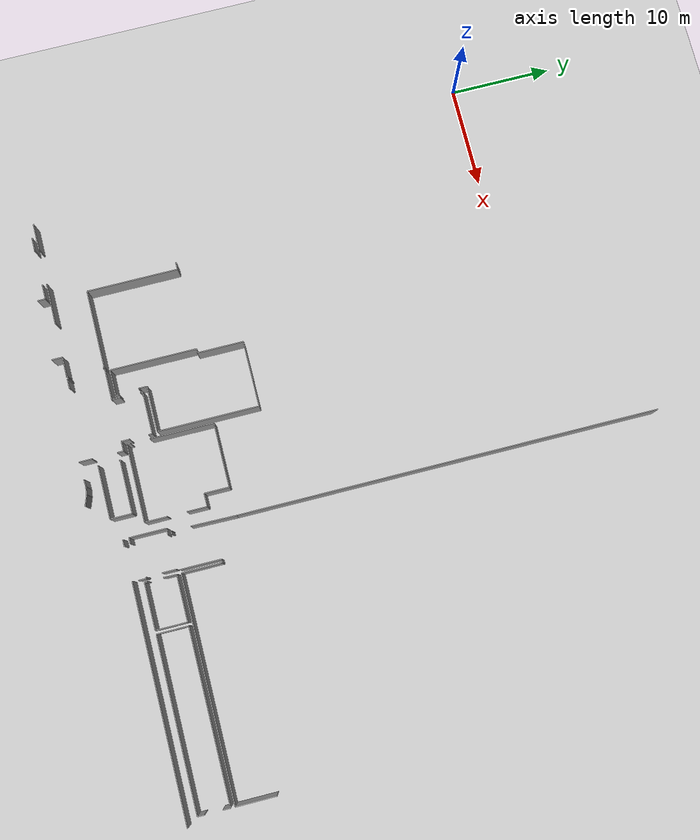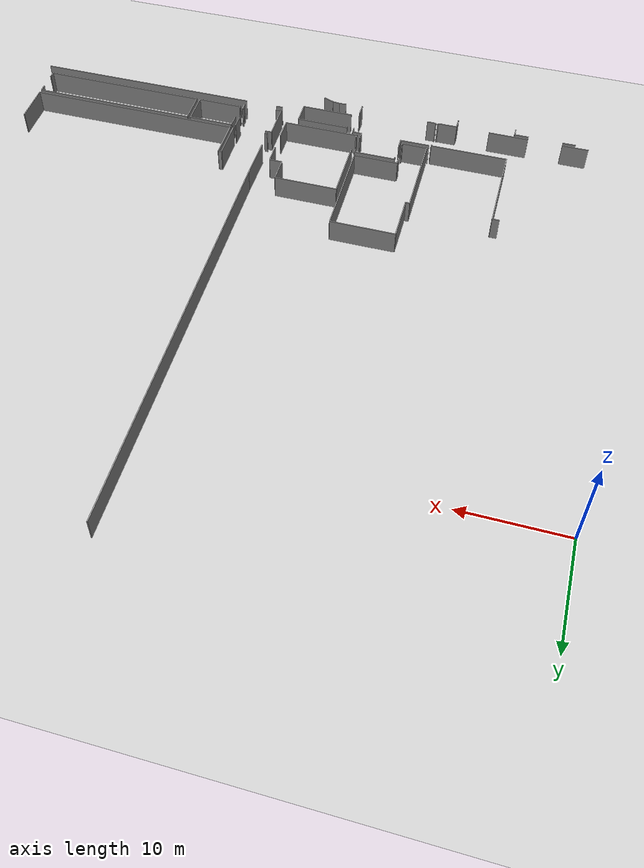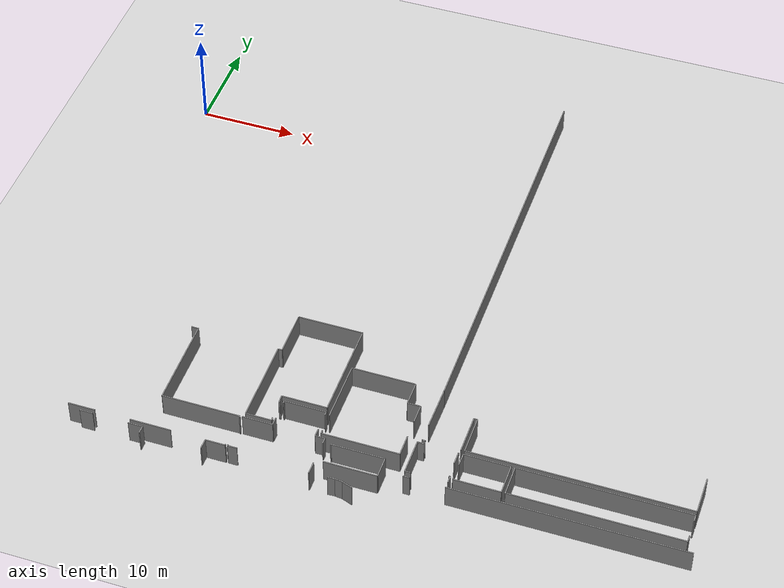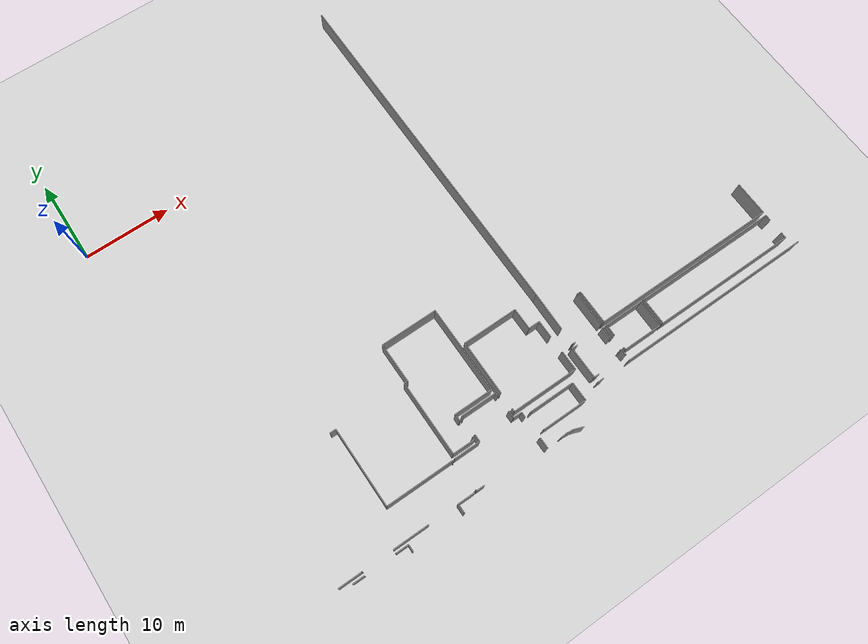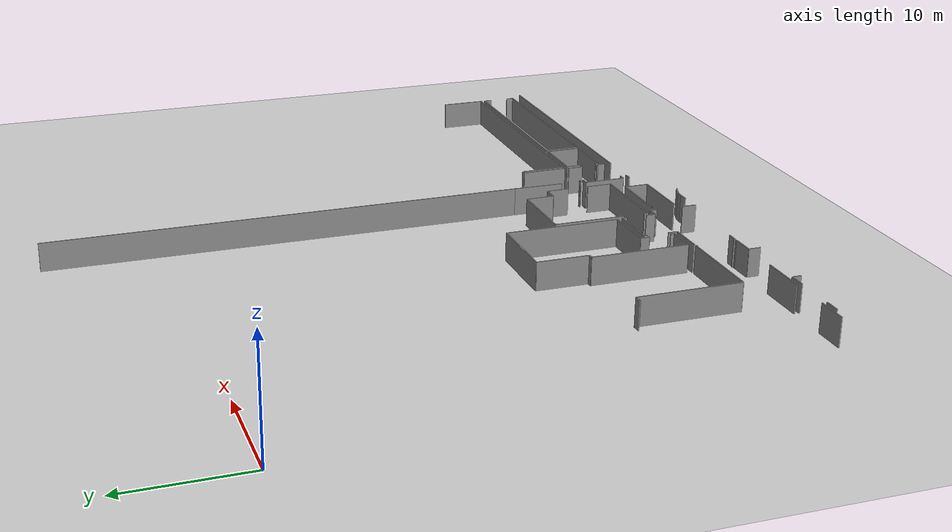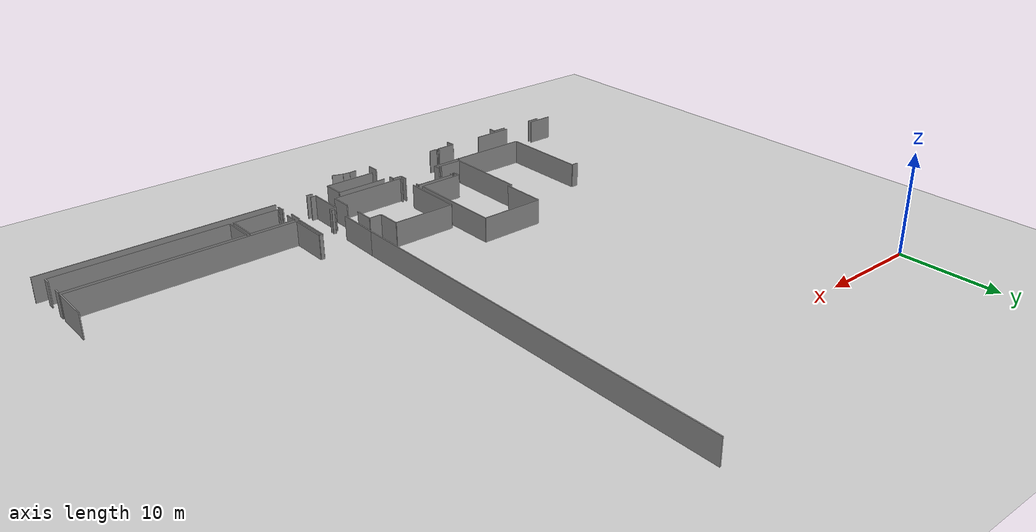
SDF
<sdf version="1.6">
 <world name="default">
  <model name="ground_plane">
   <static>1</static>
   <link name="link">
    <collision name="collision">
     <geometry><plane><normal>0 0 1</normal><size>100 100</size></plane></geometry>
     <surface><friction><ode><mu>100</mu><mu2>50</mu2></ode></friction></surface>
    </collision>
    <visual name="visual">
     <cast_shadows>0</cast_shadows>
     <geometry><plane><normal>0 0 1</normal><size>100 100</size></plane></geometry>
     <material>
      <script><uri>file://media/materials/scripts/gazebo.material</uri><name>Gazebo/Grey</name></script>
     </material>
    </visual>
   </link>
  </model>
  <model name="0510035519_A_40_1_102">
   <static>1</static>
   <link name="Wall_607">
    <collision name="Wall_607_Collision">
     <geometry><box><size>0.712924132672 0.1 2.5</size></box></geometry>
     <pose>0.356462066336 0 1.25 0 0 0</pose>
    </collision>
    <visual name="Wall_607_Visual">
     <pose>0.356462066336 0 1.25 0 0 0</pose>
     <geometry><box><size>0.712924132672 0.1 2.5</size></box></geometry>
     <material>
      <script><uri>file://media/materials/scripts/gazebo.material</uri><name>Gazebo/Grey</name></script>
      <ambient>1 1 1 1</ambient>
     </material>
    </visual>
    <pose>127.991866819 -100.280594739 0 0 0 0.0</pose>
   </link>
   <link name="Wall_608">
    <collision name="Wall_608_Collision">
     <geometry><box><size>9.08450883213 0.1 2.5</size></box></geometry>
     <pose>4.54225441606 0 1.25 0 0 0</pose>
    </collision>
    <visual name="Wall_608_Visual">
     <pose>4.54225441606 0 1.25 0 0 0</pose>
     <geometry><box><size>9.08450883213 0.1 2.5</size></box></geometry>
     <material>
      <script><uri>file://media/materials/scripts/gazebo.material</uri><name>Gazebo/Grey</name></script>
      <ambient>1 1 1 1</ambient>
     </material>
    </visual>
    <pose>128.704790952 -100.280594739 0 0 0 -1.57079632679</pose>
   </link>
   <link name="Wall_609">
    <collision name="Wall_609_Collision">
     <geometry><box><size>7.85766933537 0.1 2.5</size></box></geometry>
     <pose>3.92883466768 0 1.25 0 0 0</pose>
    </collision>
    <visual name="Wall_609_Visual">
     <pose>3.92883466768 0 1.25 0 0 0</pose>
     <geometry><box><size>7.85766933537 0.1 2.5</size></box></geometry>
     <material>
      <script><uri>file://media/materials/scripts/gazebo.material</uri><name>Gazebo/Grey</name></script>
      <ambient>1 1 1 1</ambient>
     </material>
    </visual>
    <pose>128.704790952 -109.365103571 0 0 0 0.0</pose>
   </link>
   <link name="Wall_610">
    <collision name="Wall_610_Collision">
     <geometry><box><size>0.13699326471 0.1 2.5</size></box></geometry>
     <pose>0.0684966323548 0 1.25 0 0 0</pose>
    </collision>
    <visual name="Wall_610_Visual">
     <pose>0.0684966323548 0 1.25 0 0 0</pose>
     <geometry><box><size>0.13699326471 0.1 2.5</size></box></geometry>
     <material>
      <script><uri>file://media/materials/scripts/gazebo.material</uri><name>Gazebo/Grey</name></script>
      <ambient>1 1 1 1</ambient>
     </material>
    </visual>
    <pose>136.562460287 -109.365103571 0 0 0 -1.57079632679</pose>
   </link>
   <link name="Wall_611">
    <collision name="Wall_611_Collision">
     <geometry><box><size>0.10776464608 0.1 2.5</size></box></geometry>
     <pose>0.0538823230398 0 1.25 0 0 0</pose>
    </collision>
    <visual name="Wall_611_Visual">
     <pose>0.0538823230398 0 1.25 0 0 0</pose>
     <geometry><box><size>0.10776464608 0.1 2.5</size></box></geometry>
     <material>
      <script><uri>file://media/materials/scripts/gazebo.material</uri><name>Gazebo/Grey</name></script>
      <ambient>1 1 1 1</ambient>
     </material>
    </visual>
    <pose>136.562460287 -112.980556615 0 0 0 -1.57079632679</pose>
   </link>
   <link name="Wall_612">
    <collision name="Wall_612_Collision">
     <geometry><box><size>1.99161265726 0.1 2.5</size></box></geometry>
     <pose>0.995806328631 0 1.25 0 0 0</pose>
    </collision>
    <visual name="Wall_612_Visual">
     <pose>0.995806328631 0 1.25 0 0 0</pose>
     <geometry><box><size>1.99161265726 0.1 2.5</size></box></geometry>
     <material>
      <script><uri>file://media/materials/scripts/gazebo.material</uri><name>Gazebo/Grey</name></script>
      <ambient>1 1 1 1</ambient>
     </material>
    </visual>
    <pose>136.562460287 -113.088321261 0 0 0 3.14159265359</pose>
   </link>
   <link name="Wall_613">
    <collision name="Wall_613_Collision">
     <geometry><box><size>1.06366755623 0.1 2.5</size></box></geometry>
     <pose>0.531833778117 0 1.25 0 0 0</pose>
    </collision>
    <visual name="Wall_613_Visual">
     <pose>0.531833778117 0 1.25 0 0 0</pose>
     <geometry><box><size>1.06366755623 0.1 2.5</size></box></geometry>
     <material>
      <script><uri>file://media/materials/scripts/gazebo.material</uri><name>Gazebo/Grey</name></script>
      <ambient>1 1 1 1</ambient>
     </material>
    </visual>
    <pose>134.57084763 -113.088321261 0 0 0 -1.57079632679</pose>
   </link>
   <link name="Wall_617">
    <collision name="Wall_617_Collision">
     <geometry><box><size>4.09683568433 0.1 2.5</size></box></geometry>
     <pose>2.04841784217 0 1.25 0 0 0</pose>
    </collision>
    <visual name="Wall_617_Visual">
     <pose>2.04841784217 0 1.25 0 0 0</pose>
     <geometry><box><size>4.09683568433 0.1 2.5</size></box></geometry>
     <material>
      <script><uri>file://media/materials/scripts/gazebo.material</uri><name>Gazebo/Grey</name></script>
      <ambient>1 1 1 1</ambient>
     </material>
    </visual>
    <pose>131.106112594 -113.054009404 0 0 0 3.14159265359</pose>
   </link>
   <link name="Wall_618">
    <collision name="Wall_618_Collision">
     <geometry><box><size>2.71521158978 0.1 2.5</size></box></geometry>
     <pose>1.35760579489 0 1.25 0 0 0</pose>
    </collision>
    <visual name="Wall_618_Visual">
     <pose>1.35760579489 0 1.25 0 0 0</pose>
     <geometry><box><size>2.71521158978 0.1 2.5</size></box></geometry>
     <material>
      <script><uri>file://media/materials/scripts/gazebo.material</uri><name>Gazebo/Grey</name></script>
      <ambient>1 1 1 1</ambient>
     </material>
    </visual>
    <pose>123.435506418 -113.054009404 0 0 0 3.14159265359</pose>
   </link>
   <link name="Wall_634">
    <collision name="Wall_634_Collision">
     <geometry><box><size>1.32952090482 0.1 2.5</size></box></geometry>
     <pose>0.664760452408 0 1.25 0 0 0</pose>
    </collision>
    <visual name="Wall_634_Visual">
     <pose>0.664760452408 0 1.25 0 0 0</pose>
     <geometry><box><size>1.32952090482 0.1 2.5</size></box></geometry>
     <material>
      <script><uri>file://media/materials/scripts/gazebo.material</uri><name>Gazebo/Grey</name></script>
      <ambient>1 1 1 1</ambient>
     </material>
    </visual>
    <pose>122.091244123 -113.478968103 0 0 0 0.0</pose>
   </link>
   <link name="Wall_635">
    <collision name="Wall_635_Collision">
     <geometry><box><size>1.46244757911 0.1 2.5</size></box></geometry>
     <pose>0.731223789554 0 1.25 0 0 0</pose>
    </collision>
    <visual name="Wall_635_Visual">
     <pose>0.731223789554 0 1.25 0 0 0</pose>
     <geometry><box><size>1.46244757911 0.1 2.5</size></box></geometry>
     <material>
      <script><uri>file://media/materials/scripts/gazebo.material</uri><name>Gazebo/Grey</name></script>
      <ambient>1 1 1 1</ambient>
     </material>
    </visual>
    <pose>126.99326471 -113.478968103 0 0 0 0.0</pose>
   </link>
   <link name="Wall_636">
    <collision name="Wall_636_Collision">
     <geometry><box><size>0.789172703012 0.1 2.5</size></box></geometry>
     <pose>0.394586351506 0 1.25 0 0 0</pose>
    </collision>
    <visual name="Wall_636_Visual">
     <pose>0.394586351506 0 1.25 0 0 0</pose>
     <geometry><box><size>0.789172703012 0.1 2.5</size></box></geometry>
     <material>
      <script><uri>file://media/materials/scripts/gazebo.material</uri><name>Gazebo/Grey</name></script>
      <ambient>1 1 1 1</ambient>
     </material>
    </visual>
    <pose>128.455712289 -113.478968103 0 0 0 -1.57079632679</pose>
   </link>
   <link name="Wall_643">
    <collision name="Wall_643_Collision">
     <geometry><box><size>0.93709492947 0.1 2.5</size></box></geometry>
     <pose>0.468547464735 0 1.25 0 0 0</pose>
    </collision>
    <visual name="Wall_643_Visual">
     <pose>0.468547464735 0 1.25 0 0 0</pose>
     <geometry><box><size>0.93709492947 0.1 2.5</size></box></geometry>
     <material>
      <script><uri>file://media/materials/scripts/gazebo.material</uri><name>Gazebo/Grey</name></script>
      <ambient>1 1 1 1</ambient>
     </material>
    </visual>
    <pose>137.720930233 -113.070275766 0 0 0 3.14159265359</pose>
   </link>
   <link name="Wall_644">
    <collision name="Wall_644_Collision">
     <geometry><box><size>0.143347312238 0.1 2.5</size></box></geometry>
     <pose>0.0716736561189 0 1.25 0 0 0</pose>
    </collision>
    <visual name="Wall_644_Visual">
     <pose>0.0716736561189 0 1.25 0 0 0</pose>
     <geometry><box><size>0.143347312238 0.1 2.5</size></box></geometry>
     <material>
      <script><uri>file://media/materials/scripts/gazebo.material</uri><name>Gazebo/Grey</name></script>
      <ambient>1 1 1 1</ambient>
     </material>
    </visual>
    <pose>136.783835303 -113.070275766 0 0 0 1.57079632679</pose>
   </link>
   <link name="Wall_645">
    <collision name="Wall_645_Collision">
     <geometry><box><size>3.03875968992 0.1 2.5</size></box></geometry>
     <pose>1.51937984496 0 1.25 0 0 0</pose>
    </collision>
    <visual name="Wall_645_Visual">
     <pose>1.51937984496 0 1.25 0 0 0</pose>
     <geometry><box><size>3.03875968992 0.1 2.5</size></box></geometry>
     <material>
      <script><uri>file://media/materials/scripts/gazebo.material</uri><name>Gazebo/Grey</name></script>
      <ambient>1 1 1 1</ambient>
     </material>
    </visual>
    <pose>136.783835303 -109.343245647 0 0 0 0.0</pose>
   </link>
   <link name="Wall_646">
    <collision name="Wall_646_Collision">
     <geometry><box><size>0.852204854492 0.1 2.5</size></box></geometry>
     <pose>0.426102427246 0 1.25 0 0 0</pose>
    </collision>
    <visual name="Wall_646_Visual">
     <pose>0.426102427246 0 1.25 0 0 0</pose>
     <geometry><box><size>0.852204854492 0.1 2.5</size></box></geometry>
     <material>
      <script><uri>file://media/materials/scripts/gazebo.material</uri><name>Gazebo/Grey</name></script>
      <ambient>1 1 1 1</ambient>
     </material>
    </visual>
    <pose>139.822594993 -109.343245647 0 0 0 1.57079632679</pose>
   </link>
   <link name="Wall_647">
    <collision name="Wall_647_Collision">
     <geometry><box><size>0.262295081967 0.1 2.5</size></box></geometry>
     <pose>0.131147540984 0 1.25 0 0 0</pose>
    </collision>
    <visual name="Wall_647_Visual">
     <pose>0.131147540984 0 1.25 0 0 0</pose>
     <geometry><box><size>0.262295081967 0.1 2.5</size></box></geometry>
     <material>
      <script><uri>file://media/materials/scripts/gazebo.material</uri><name>Gazebo/Grey</name></script>
      <ambient>1 1 1 1</ambient>
     </material>
    </visual>
    <pose>139.822594993 -106.546193926 0 0 0 1.57079632679</pose>
   </link>
   <link name="Wall_648">
    <collision name="Wall_648_Collision">
     <geometry><box><size>4.21222518744 0.1 2.5</size></box></geometry>
     <pose>2.10611259372 0 1.25 0 0 0</pose>
    </collision>
    <visual name="Wall_648_Visual">
     <pose>2.10611259372 0 1.25 0 0 0</pose>
     <geometry><box><size>4.21222518744 0.1 2.5</size></box></geometry>
     <material>
      <script><uri>file://media/materials/scripts/gazebo.material</uri><name>Gazebo/Grey</name></script>
      <ambient>1 1 1 1</ambient>
     </material>
    </visual>
    <pose>139.822594993 -106.283898844 0 0 0 0.0</pose>
   </link>
   <link name="Wall_649">
    <collision name="Wall_649_Collision">
     <geometry><box><size>0.398525860973 0.1 2.5</size></box></geometry>
     <pose>0.199262930487 0 1.25 0 0 0</pose>
    </collision>
    <visual name="Wall_649_Visual">
     <pose>0.199262930487 0 1.25 0 0 0</pose>
     <geometry><box><size>0.398525860973 0.1 2.5</size></box></geometry>
     <material>
      <script><uri>file://media/materials/scripts/gazebo.material</uri><name>Gazebo/Grey</name></script>
      <ambient>1 1 1 1</ambient>
     </material>
    </visual>
    <pose>144.03482018 -106.283898844 0 0 0 -1.57079632679</pose>
   </link>
   <link name="Wall_650">
    <collision name="Wall_650_Collision">
     <geometry><box><size>0.822722073961 0.1 2.5</size></box></geometry>
     <pose>0.411361036981 0 1.25 0 0 0</pose>
    </collision>
    <visual name="Wall_650_Visual">
     <pose>0.411361036981 0 1.25 0 0 0</pose>
     <geometry><box><size>0.822722073961 0.1 2.5</size></box></geometry>
     <material>
      <script><uri>file://media/materials/scripts/gazebo.material</uri><name>Gazebo/Grey</name></script>
      <ambient>1 1 1 1</ambient>
     </material>
    </visual>
    <pose>144.03482018 -108.514932012 0 0 0 -1.57079632679</pose>
   </link>
   <link name="Wall_651">
    <collision name="Wall_651_Collision">
     <geometry><box><size>0.960731986275 0.1 2.5</size></box></geometry>
     <pose>0.480365993138 0 1.25 0 0 0</pose>
    </collision>
    <visual name="Wall_651_Visual">
     <pose>0.480365993138 0 1.25 0 0 0</pose>
     <geometry><box><size>0.960731986275 0.1 2.5</size></box></geometry>
     <material>
      <script><uri>file://media/materials/scripts/gazebo.material</uri><name>Gazebo/Grey</name></script>
      <ambient>1 1 1 1</ambient>
     </material>
    </visual>
    <pose>144.03482018 -109.337654086 0 0 0 0.0</pose>
   </link>
   <link name="Wall_652">
    <collision name="Wall_652_Collision">
     <geometry><box><size>0.622950819672 0.1 2.5</size></box></geometry>
     <pose>0.311475409836 0 1.25 0 0 0</pose>
    </collision>
    <visual name="Wall_652_Visual">
     <pose>0.311475409836 0 1.25 0 0 0</pose>
     <geometry><box><size>0.622950819672 0.1 2.5</size></box></geometry>
     <material>
      <script><uri>file://media/materials/scripts/gazebo.material</uri><name>Gazebo/Grey</name></script>
      <ambient>1 1 1 1</ambient>
     </material>
    </visual>
    <pose>144.995552167 -109.337654086 0 0 0 -1.57079632679</pose>
   </link>
   <link name="Wall_653">
    <collision name="Wall_653_Collision">
     <geometry><box><size>1.28631338162 0.1 2.5</size></box></geometry>
     <pose>0.643156690812 0 1.25 0 0 0</pose>
    </collision>
    <visual name="Wall_653_Visual">
     <pose>0.643156690812 0 1.25 0 0 0</pose>
     <geometry><box><size>1.28631338162 0.1 2.5</size></box></geometry>
     <material>
      <script><uri>file://media/materials/scripts/gazebo.material</uri><name>Gazebo/Grey</name></script>
      <ambient>1 1 1 1</ambient>
     </material>
    </visual>
    <pose>144.995552167 -112.420637946 0 0 0 -1.57079632679</pose>
   </link>
   <link name="Wall_669">
    <collision name="Wall_669_Collision">
     <geometry><box><size>8.5853348583 0.1 2.5</size></box></geometry>
     <pose>4.29266742915 0 1.25 0 0 0</pose>
    </collision>
    <visual name="Wall_669_Visual">
     <pose>4.29266742915 0 1.25 0 0 0</pose>
     <geometry><box><size>8.5853348583 0.1 2.5</size></box></geometry>
     <material>
      <script><uri>file://media/materials/scripts/gazebo.material</uri><name>Gazebo/Grey</name></script>
      <ambient>1 1 1 1</ambient>
     </material>
    </visual>
    <pose>136.946244758 -108.875587749 0 0 0 1.57079632679</pose>
   </link>
   <link name="Wall_670">
    <collision name="Wall_670_Collision">
     <geometry><box><size>0.412250603635 0.1 2.5</size></box></geometry>
     <pose>0.206125301817 0 1.25 0 0 0</pose>
    </collision>
    <visual name="Wall_670_Visual">
     <pose>0.206125301817 0 1.25 0 0 0</pose>
     <geometry><box><size>0.412250603635 0.1 2.5</size></box></geometry>
     <material>
      <script><uri>file://media/materials/scripts/gazebo.material</uri><name>Gazebo/Grey</name></script>
      <ambient>1 1 1 1</ambient>
     </material>
    </visual>
    <pose>136.946244758 -100.290252891 0 0 0 0.0</pose>
   </link>
   <link name="Wall_671">
    <collision name="Wall_671_Collision">
     <geometry><box><size>4.58711399161 0.1 2.5</size></box></geometry>
     <pose>2.29355699581 0 1.25 0 0 0</pose>
    </collision>
    <visual name="Wall_671_Visual">
     <pose>2.29355699581 0 1.25 0 0 0</pose>
     <geometry><box><size>4.58711399161 0.1 2.5</size></box></geometry>
     <material>
      <script><uri>file://media/materials/scripts/gazebo.material</uri><name>Gazebo/Grey</name></script>
      <ambient>1 1 1 1</ambient>
     </material>
    </visual>
    <pose>137.358495362 -100.290252891 0 0 0 1.57079632679</pose>
   </link>
   <link name="Wall_672">
    <collision name="Wall_672_Collision">
     <geometry><box><size>6.57415173465 0.1 2.5</size></box></geometry>
     <pose>3.28707586733 0 1.25 0 0 0</pose>
    </collision>
    <visual name="Wall_672_Visual">
     <pose>3.28707586733 0 1.25 0 0 0</pose>
     <geometry><box><size>6.57415173465 0.1 2.5</size></box></geometry>
     <material>
      <script><uri>file://media/materials/scripts/gazebo.material</uri><name>Gazebo/Grey</name></script>
      <ambient>1 1 1 1</ambient>
     </material>
    </visual>
    <pose>137.358495362 -95.7031388995 0 0 0 0.0</pose>
   </link>
   <link name="Wall_673">
    <collision name="Wall_673_Collision">
     <geometry><box><size>10.0670987419 0.1 2.5</size></box></geometry>
     <pose>5.03354937095 0 1.25 0 0 0</pose>
    </collision>
    <visual name="Wall_673_Visual">
     <pose>5.03354937095 0 1.25 0 0 0</pose>
     <geometry><box><size>10.0670987419 0.1 2.5</size></box></geometry>
     <material>
      <script><uri>file://media/materials/scripts/gazebo.material</uri><name>Gazebo/Grey</name></script>
      <ambient>1 1 1 1</ambient>
     </material>
    </visual>
    <pose>143.932647096 -95.7031388995 0 0 0 -1.57079632679</pose>
   </link>
   <link name="Wall_674">
    <collision name="Wall_674_Collision">
     <geometry><box><size>4.5403482018 0.1 2.5</size></box></geometry>
     <pose>2.2701741009 0 1.25 0 0 0</pose>
    </collision>
    <visual name="Wall_674_Visual">
     <pose>2.2701741009 0 1.25 0 0 0</pose>
     <geometry><box><size>4.5403482018 0.1 2.5</size></box></geometry>
     <material>
      <script><uri>file://media/materials/scripts/gazebo.material</uri><name>Gazebo/Grey</name></script>
      <ambient>1 1 1 1</ambient>
     </material>
    </visual>
    <pose>143.932647096 -105.770237641 0 0 0 3.14159265359</pose>
   </link>
   <link name="Wall_675">
    <collision name="Wall_675_Collision">
     <geometry><box><size>0.779260388868 0.1 2.5</size></box></geometry>
     <pose>0.389630194434 0 1.25 0 0 0</pose>
    </collision>
    <visual name="Wall_675_Visual">
     <pose>0.389630194434 0 1.25 0 0 0</pose>
     <geometry><box><size>0.779260388868 0.1 2.5</size></box></geometry>
     <material>
      <script><uri>file://media/materials/scripts/gazebo.material</uri><name>Gazebo/Grey</name></script>
      <ambient>1 1 1 1</ambient>
     </material>
    </visual>
    <pose>139.392298894 -105.770237641 0 0 0 -1.57079632679</pose>
   </link>
   <link name="Wall_676">
    <collision name="Wall_676_Collision">
     <geometry><box><size>0.138772398018 0.1 2.5</size></box></geometry>
     <pose>0.0693861990088 0 1.25 0 0 0</pose>
    </collision>
    <visual name="Wall_676_Visual">
     <pose>0.0693861990088 0 1.25 0 0 0</pose>
     <geometry><box><size>0.138772398018 0.1 2.5</size></box></geometry>
     <material>
      <script><uri>file://media/materials/scripts/gazebo.material</uri><name>Gazebo/Grey</name></script>
      <ambient>1 1 1 1</ambient>
     </material>
    </visual>
    <pose>139.392298894 -106.54949803 0 0 0 0.0</pose>
   </link>
   <link name="Wall_677">
    <collision name="Wall_677_Collision">
     <geometry><box><size>0.334477061888 0.1 2.5</size></box></geometry>
     <pose>0.167238530944 0 1.25 0 0 0</pose>
    </collision>
    <visual name="Wall_677_Visual">
     <pose>0.167238530944 0 1.25 0 0 0</pose>
     <geometry><box><size>0.334477061888 0.1 2.5</size></box></geometry>
     <material>
      <script><uri>file://media/materials/scripts/gazebo.material</uri><name>Gazebo/Grey</name></script>
      <ambient>1 1 1 1</ambient>
     </material>
    </visual>
    <pose>139.531071292 -108.56017283 0 0 0 -1.57079632679</pose>
   </link>
   <link name="Wall_678">
    <collision name="Wall_678_Collision">
     <geometry><box><size>2.58489682168 0.1 2.5</size></box></geometry>
     <pose>1.29244841084 0 1.25 0 0 0</pose>
    </collision>
    <visual name="Wall_678_Visual">
     <pose>1.29244841084 0 1.25 0 0 0</pose>
     <geometry><box><size>2.58489682168 0.1 2.5</size></box></geometry>
     <material>
      <script><uri>file://media/materials/scripts/gazebo.material</uri><name>Gazebo/Grey</name></script>
      <ambient>1 1 1 1</ambient>
     </material>
    </visual>
    <pose>139.531071292 -108.894649892 0 0 0 3.13421815601</pose>
   </link>
   <link name="Wall_679">
    <collision name="Wall_679_Collision">
     <geometry><box><size>6.39852586097 0.1 2.5</size></box></geometry>
     <pose>3.19926293049 0 1.25 0 0 0</pose>
    </collision>
    <visual name="Wall_679_Visual">
     <pose>3.19926293049 0 1.25 0 0 0</pose>
     <geometry><box><size>6.39852586097 0.1 2.5</size></box></geometry>
     <material>
      <script><uri>file://media/materials/scripts/gazebo.material</uri><name>Gazebo/Grey</name></script>
      <ambient>1 1 1 1</ambient>
     </material>
    </visual>
    <pose>144.461303851 -100.309569196 0 0 0 0.0</pose>
   </link>
   <link name="Wall_680">
    <collision name="Wall_680_Collision">
     <geometry><box><size>2.45952471724 0.1 2.5</size></box></geometry>
     <pose>1.22976235862 0 1.25 0 0 0</pose>
    </collision>
    <visual name="Wall_680_Visual">
     <pose>1.22976235862 0 1.25 0 0 0</pose>
     <geometry><box><size>2.45952471724 0.1 2.5</size></box></geometry>
     <material>
      <script><uri>file://media/materials/scripts/gazebo.material</uri><name>Gazebo/Grey</name></script>
      <ambient>1 1 1 1</ambient>
     </material>
    </visual>
    <pose>150.859829712 -100.309569196 0 0 0 -1.57079632679</pose>
   </link>
   <link name="Wall_681">
    <collision name="Wall_681_Collision">
     <geometry><box><size>1.30029228619 0.1 2.5</size></box></geometry>
     <pose>0.650146143093 0 1.25 0 0 0</pose>
    </collision>
    <visual name="Wall_681_Visual">
     <pose>0.650146143093 0 1.25 0 0 0</pose>
     <geometry><box><size>1.30029228619 0.1 2.5</size></box></geometry>
     <material>
      <script><uri>file://media/materials/scripts/gazebo.material</uri><name>Gazebo/Grey</name></script>
      <ambient>1 1 1 1</ambient>
     </material>
    </visual>
    <pose>150.859829712 -102.769093913 0 0 0 0.0</pose>
   </link>
   <link name="Wall_682">
    <collision name="Wall_682_Collision">
     <geometry><box><size>1.98373363833 0.1 2.5</size></box></geometry>
     <pose>0.991866819164 0 1.25 0 0 0</pose>
    </collision>
    <visual name="Wall_682_Visual">
     <pose>0.991866819164 0 1.25 0 0 0</pose>
     <geometry><box><size>1.98373363833 0.1 2.5</size></box></geometry>
     <material>
      <script><uri>file://media/materials/scripts/gazebo.material</uri><name>Gazebo/Grey</name></script>
      <ambient>1 1 1 1</ambient>
     </material>
    </visual>
    <pose>152.160121998 -102.769093913 0 0 0 -1.57079632679</pose>
   </link>
   <link name="Wall_683">
    <collision name="Wall_683_Collision">
     <geometry><box><size>2.22315414919 0.1 2.5</size></box></geometry>
     <pose>1.1115770746 0 1.25 0 0 0</pose>
    </collision>
    <visual name="Wall_683_Visual">
     <pose>1.1115770746 0 1.25 0 0 0</pose>
     <geometry><box><size>2.22315414919 0.1 2.5</size></box></geometry>
     <material>
      <script><uri>file://media/materials/scripts/gazebo.material</uri><name>Gazebo/Grey</name></script>
      <ambient>1 1 1 1</ambient>
     </material>
    </visual>
    <pose>152.160121998 -106.662091752 0 0 0 -1.57079632679</pose>
   </link>
   <link name="Wall_684">
    <collision name="Wall_684_Collision">
     <geometry><box><size>7.71711780404 0.1 2.5</size></box></geometry>
     <pose>3.85855890202 0 1.25 0 0 0</pose>
    </collision>
    <visual name="Wall_684_Visual">
     <pose>3.85855890202 0 1.25 0 0 0</pose>
     <geometry><box><size>7.71711780404 0.1 2.5</size></box></geometry>
     <material>
      <script><uri>file://media/materials/scripts/gazebo.material</uri><name>Gazebo/Grey</name></script>
      <ambient>1 1 1 1</ambient>
     </material>
    </visual>
    <pose>152.160121998 -108.885245902 0 0 0 3.14159265359</pose>
   </link>
   <link name="Wall_685">
    <collision name="Wall_685_Collision">
     <geometry><box><size>0.372855508959 0.1 2.5</size></box></geometry>
     <pose>0.18642775448 0 1.25 0 0 0</pose>
    </collision>
    <visual name="Wall_685_Visual">
     <pose>0.18642775448 0 1.25 0 0 0</pose>
     <geometry><box><size>0.372855508959 0.1 2.5</size></box></geometry>
     <material>
      <script><uri>file://media/materials/scripts/gazebo.material</uri><name>Gazebo/Grey</name></script>
      <ambient>1 1 1 1</ambient>
     </material>
    </visual>
    <pose>144.443004194 -108.885245902 0 0 0 1.57079632679</pose>
   </link>
   <link name="Wall_686">
    <collision name="Wall_686_Collision">
     <geometry><box><size>6.30857908946 0.1 2.5</size></box></geometry>
     <pose>3.15428954473 0 1.25 0 0 0</pose>
    </collision>
    <visual name="Wall_686_Visual">
     <pose>3.15428954473 0 1.25 0 0 0</pose>
     <geometry><box><size>6.30857908946 0.1 2.5</size></box></geometry>
     <material>
      <script><uri>file://media/materials/scripts/gazebo.material</uri><name>Gazebo/Grey</name></script>
      <ambient>1 1 1 1</ambient>
     </material>
    </visual>
    <pose>144.443004194 -106.618121744 0 0 0 1.56789556542</pose>
   </link>
   <link name="Wall_687">
    <collision name="Wall_687_Collision">
     <geometry><box><size>5.30130893379 0.1 2.5</size></box></geometry>
     <pose>2.6506544669 0 1.25 0 0 0</pose>
    </collision>
    <visual name="Wall_687_Visual">
     <pose>2.6506544669 0 1.25 0 0 0</pose>
     <geometry><box><size>5.30130893379 0.1 2.5</size></box></geometry>
     <material>
      <script><uri>file://media/materials/scripts/gazebo.material</uri><name>Gazebo/Grey</name></script>
      <ambient>1 1 1 1</ambient>
     </material>
    </visual>
    <pose>145.753717118 -109.83555725 0 0 0 0.0</pose>
   </link>
   <link name="Wall_688">
    <collision name="Wall_688_Collision">
     <geometry><box><size>2.16444275003 0.1 2.5</size></box></geometry>
     <pose>1.08222137502 0 1.25 0 0 0</pose>
    </collision>
    <visual name="Wall_688_Visual">
     <pose>1.08222137502 0 1.25 0 0 0</pose>
     <geometry><box><size>2.16444275003 0.1 2.5</size></box></geometry>
     <material>
      <script><uri>file://media/materials/scripts/gazebo.material</uri><name>Gazebo/Grey</name></script>
      <ambient>1 1 1 1</ambient>
     </material>
    </visual>
    <pose>151.055026052 -109.83555725 0 0 0 -1.57079632679</pose>
   </link>
   <link name="Wall_689">
    <collision name="Wall_689_Collision">
     <geometry><box><size>5.27589274368 0.1 2.5</size></box></geometry>
     <pose>2.63794637184 0 1.25 0 0 0</pose>
    </collision>
    <visual name="Wall_689_Visual">
     <pose>2.63794637184 0 1.25 0 0 0</pose>
     <geometry><box><size>5.27589274368 0.1 2.5</size></box></geometry>
     <material>
      <script><uri>file://media/materials/scripts/gazebo.material</uri><name>Gazebo/Grey</name></script>
      <ambient>1 1 1 1</ambient>
     </material>
    </visual>
    <pose>151.055026052 -112.0 0 0 0 3.14159265359</pose>
   </link>
   <link name="Wall_690">
    <collision name="Wall_690_Collision">
     <geometry><box><size>0.115178815449 0.1 2.5</size></box></geometry>
     <pose>0.0575894077245 0 1.25 0 0 0</pose>
    </collision>
    <visual name="Wall_690_Visual">
     <pose>0.0575894077245 0 1.25 0 0 0</pose>
     <geometry><box><size>0.115178815449 0.1 2.5</size></box></geometry>
     <material>
      <script><uri>file://media/materials/scripts/gazebo.material</uri><name>Gazebo/Grey</name></script>
      <ambient>1 1 1 1</ambient>
     </material>
    </visual>
    <pose>145.779133308 -109.94789681 0 0 0 1.79329483748</pose>
   </link>
   <link name="Wall_697">
    <collision name="Wall_697_Collision">
     <geometry><box><size>0.723020252923 0.1 2.5</size></box></geometry>
     <pose>0.361510126462 0 1.25 0 0 0</pose>
    </collision>
    <visual name="Wall_697_Visual">
     <pose>0.361510126462 0 1.25 0 0 0</pose>
     <geometry><box><size>0.723020252923 0.1 2.5</size></box></geometry>
     <material>
      <script><uri>file://media/materials/scripts/gazebo.material</uri><name>Gazebo/Grey</name></script>
      <ambient>1 1 1 1</ambient>
     </material>
    </visual>
    <pose>146.761214894 -113.588766044 0 0 0 0.0348083057935</pose>
   </link>
   <link name="Wall_698">
    <collision name="Wall_698_Collision">
     <geometry><box><size>0.752897738437 0.1 2.5</size></box></geometry>
     <pose>0.376448869219 0 1.25 0 0 0</pose>
    </collision>
    <visual name="Wall_698_Visual">
     <pose>0.376448869219 0 1.25 0 0 0</pose>
     <geometry><box><size>0.752897738437 0.1 2.5</size></box></geometry>
     <material>
      <script><uri>file://media/materials/scripts/gazebo.material</uri><name>Gazebo/Grey</name></script>
      <ambient>1 1 1 1</ambient>
     </material>
    </visual>
    <pose>147.483797179 -113.563604016 0 0 0 -0.117069301503</pose>
   </link>
   <link name="Wall_699">
    <collision name="Wall_699_Collision">
     <geometry><box><size>1.12442443009 0.1 2.5</size></box></geometry>
     <pose>0.562212215043 0 1.25 0 0 0</pose>
    </collision>
    <visual name="Wall_699_Visual">
     <pose>0.562212215043 0 1.25 0 0 0</pose>
     <geometry><box><size>1.12442443009 0.1 2.5</size></box></geometry>
     <material>
      <script><uri>file://media/materials/scripts/gazebo.material</uri><name>Gazebo/Grey</name></script>
      <ambient>1 1 1 1</ambient>
     </material>
    </visual>
    <pose>148.231541492 -113.651544034 0 0 0 -0.351204276755</pose>
   </link>
   <link name="Wall_726">
    <collision name="Wall_726_Collision">
     <geometry><box><size>41.7654085653 0.1 2.5</size></box></geometry>
     <pose>20.8827042826 0 1.25 0 0 0</pose>
    </collision>
    <visual name="Wall_726_Visual">
     <pose>20.8827042826 0 1.25 0 0 0</pose>
     <geometry><box><size>41.7654085653 0.1 2.5</size></box></geometry>
     <material>
      <script><uri>file://media/materials/scripts/gazebo.material</uri><name>Gazebo/Grey</name></script>
      <ambient>1 1 1 1</ambient>
     </material>
    </visual>
    <pose>153.664506291 -100.244757911 0 0 0 1.57079632679</pose>
   </link>
   <link name="Wall_739">
    <collision name="Wall_739_Collision">
     <geometry><box><size>3.96822976236 0.1 2.5</size></box></geometry>
     <pose>1.98411488118 0 1.25 0 0 0</pose>
    </collision>
    <visual name="Wall_739_Visual">
     <pose>1.98411488118 0 1.25 0 0 0</pose>
     <geometry><box><size>3.96822976236 0.1 2.5</size></box></geometry>
     <material>
      <script><uri>file://media/materials/scripts/gazebo.material</uri><name>Gazebo/Grey</name></script>
      <ambient>1 1 1 1</ambient>
     </material>
    </visual>
    <pose>179.589782692 -102.617105096 0 0 0 -1.57079632679</pose>
   </link>
   <link name="Wall_740">
    <collision name="Wall_740_Collision">
     <geometry><box><size>21.9044351252 0.1 2.5</size></box></geometry>
     <pose>10.9522175626 0 1.25 0 0 0</pose>
    </collision>
    <visual name="Wall_740_Visual">
     <pose>10.9522175626 0 1.25 0 0 0</pose>
     <geometry><box><size>21.9044351252 0.1 2.5</size></box></geometry>
     <material>
      <script><uri>file://media/materials/scripts/gazebo.material</uri><name>Gazebo/Grey</name></script>
      <ambient>1 1 1 1</ambient>
     </material>
    </visual>
    <pose>179.589782692 -106.585334858 0 0 0 3.14159265359</pose>
   </link>
   <link name="Wall_741">
    <collision name="Wall_741_Collision">
     <geometry><box><size>3.97102554327 0.1 2.5</size></box></geometry>
     <pose>1.98551277164 0 1.25 0 0 0</pose>
    </collision>
    <visual name="Wall_741_Visual">
     <pose>1.98551277164 0 1.25 0 0 0</pose>
     <geometry><box><size>3.97102554327 0.1 2.5</size></box></geometry>
     <material>
      <script><uri>file://media/materials/scripts/gazebo.material</uri><name>Gazebo/Grey</name></script>
      <ambient>1 1 1 1</ambient>
     </material>
    </visual>
    <pose>157.685347566 -106.585334858 0 0 0 1.57079632679</pose>
   </link>
   <link name="Wall_742">
    <collision name="Wall_742_Collision">
     <geometry><box><size>0.349218452154 0.1 2.5</size></box></geometry>
     <pose>0.174609226077 0 1.25 0 0 0</pose>
    </collision>
    <visual name="Wall_742_Visual">
     <pose>0.174609226077 0 1.25 0 0 0</pose>
     <geometry><box><size>0.349218452154 0.1 2.5</size></box></geometry>
     <material>
      <script><uri>file://media/materials/scripts/gazebo.material</uri><name>Gazebo/Grey</name></script>
      <ambient>1 1 1 1</ambient>
     </material>
    </visual>
    <pose>157.685347566 -102.614309315 0 0 0 3.14159265359</pose>
   </link>
   <link name="Wall_743">
    <collision name="Wall_743_Collision">
     <geometry><box><size>4.01829965688 0.1 2.5</size></box></geometry>
     <pose>2.00914982844 0 1.25 0 0 0</pose>
    </collision>
    <visual name="Wall_743_Visual">
     <pose>2.00914982844 0 1.25 0 0 0</pose>
     <geometry><box><size>4.01829965688 0.1 2.5</size></box></geometry>
     <material>
      <script><uri>file://media/materials/scripts/gazebo.material</uri><name>Gazebo/Grey</name></script>
      <ambient>1 1 1 1</ambient>
     </material>
    </visual>
    <pose>157.336129114 -102.614309315 0 0 0 -1.57079632679</pose>
   </link>
   <link name="Wall_744">
    <collision name="Wall_744_Collision">
     <geometry><box><size>0.304994281357 0.1 2.5</size></box></geometry>
     <pose>0.152497140679 0 1.25 0 0 0</pose>
    </collision>
    <visual name="Wall_744_Visual">
     <pose>0.152497140679 0 1.25 0 0 0</pose>
     <geometry><box><size>0.304994281357 0.1 2.5</size></box></geometry>
     <material>
      <script><uri>file://media/materials/scripts/gazebo.material</uri><name>Gazebo/Grey</name></script>
      <ambient>1 1 1 1</ambient>
     </material>
    </visual>
    <pose>153.89706443 -106.632608972 0 0 0 3.14159265359</pose>
   </link>
   <link name="Wall_745">
    <collision name="Wall_745_Collision">
     <geometry><box><size>0.0653196085907 0.1 2.5</size></box></geometry>
     <pose>0.0326598042953 0 1.25 0 0 0</pose>
    </collision>
    <visual name="Wall_745_Visual">
     <pose>0.0326598042953 0 1.25 0 0 0</pose>
     <geometry><box><size>0.0653196085907 0.1 2.5</size></box></geometry>
     <material>
      <script><uri>file://media/materials/scripts/gazebo.material</uri><name>Gazebo/Grey</name></script>
      <ambient>1 1 1 1</ambient>
     </material>
    </visual>
    <pose>153.592070149 -106.632608972 0 0 0 1.57079632679</pose>
   </link>
   <link name="Wall_746">
    <collision name="Wall_746_Collision">
     <geometry><box><size>4.47383590727 0.1 2.5</size></box></geometry>
     <pose>2.23691795364 0 1.25 0 0 0</pose>
    </collision>
    <visual name="Wall_746_Visual">
     <pose>2.23691795364 0 1.25 0 0 0</pose>
     <geometry><box><size>4.47383590727 0.1 2.5</size></box></geometry>
     <material>
      <script><uri>file://media/materials/scripts/gazebo.material</uri><name>Gazebo/Grey</name></script>
      <ambient>1 1 1 1</ambient>
     </material>
    </visual>
    <pose>153.592070149 -104.718007371 0 0 0 1.55460456014</pose>
   </link>
   <link name="Wall_860">
    <collision name="Wall_860_Collision">
     <geometry><box><size>0.655229381116 0.1 2.5</size></box></geometry>
     <pose>0.327614690558 0 1.25 0 0 0</pose>
    </collision>
    <visual name="Wall_860_Visual">
     <pose>0.327614690558 0 1.25 0 0 0</pose>
     <geometry><box><size>0.655229381116 0.1 2.5</size></box></geometry>
     <material>
      <script><uri>file://media/materials/scripts/gazebo.material</uri><name>Gazebo/Grey</name></script>
      <ambient>1 1 1 1</ambient>
     </material>
    </visual>
    <pose>153.256830601 -111.245901639 0 0 0 0.0</pose>
   </link>
   <link name="Wall_861">
    <collision name="Wall_861_Collision">
     <geometry><box><size>23.1050959461 0.1 2.5</size></box></geometry>
     <pose>11.5525479731 0 1.25 0 0 0</pose>
    </collision>
    <visual name="Wall_861_Visual">
     <pose>11.5525479731 0 1.25 0 0 0</pose>
     <geometry><box><size>23.1050959461 0.1 2.5</size></box></geometry>
     <material>
      <script><uri>file://media/materials/scripts/gazebo.material</uri><name>Gazebo/Grey</name></script>
      <ambient>1 1 1 1</ambient>
     </material>
    </visual>
    <pose>157.292921591 -111.245901639 0 0 0 0.0</pose>
   </link>
   <link name="Wall_878">
    <collision name="Wall_878_Collision">
     <geometry><box><size>3.64671495743 0.1 2.5</size></box></geometry>
     <pose>1.82335747871 0 1.25 0 0 0</pose>
    </collision>
    <visual name="Wall_878_Visual">
     <pose>1.82335747871 0 1.25 0 0 0</pose>
     <geometry><box><size>3.64671495743 0.1 2.5</size></box></geometry>
     <material>
      <script><uri>file://media/materials/scripts/gazebo.material</uri><name>Gazebo/Grey</name></script>
      <ambient>1 1 1 1</ambient>
     </material>
    </visual>
    <pose>153.226331173 -110.635404753 0 0 0 1.57079632679</pose>
   </link>
   <link name="Wall_879">
    <collision name="Wall_879_Collision">
     <geometry><box><size>0.668699961876 0.1 2.5</size></box></geometry>
     <pose>0.334349980938 0 1.25 0 0 0</pose>
    </collision>
    <visual name="Wall_879_Visual">
     <pose>0.334349980938 0 1.25 0 0 0</pose>
     <geometry><box><size>0.668699961876 0.1 2.5</size></box></geometry>
     <material>
      <script><uri>file://media/materials/scripts/gazebo.material</uri><name>Gazebo/Grey</name></script>
      <ambient>1 1 1 1</ambient>
     </material>
    </visual>
    <pose>153.226331173 -106.988689795 0 0 0 0.0</pose>
   </link>
   <link name="Wall_880">
    <collision name="Wall_880_Collision">
     <geometry><box><size>1.34095819037 0.1 2.5</size></box></geometry>
     <pose>0.670479095184 0 1.25 0 0 0</pose>
    </collision>
    <visual name="Wall_880_Visual">
     <pose>0.670479095184 0 1.25 0 0 0</pose>
     <geometry><box><size>1.34095819037 0.1 2.5</size></box></geometry>
     <material>
      <script><uri>file://media/materials/scripts/gazebo.material</uri><name>Gazebo/Grey</name></script>
      <ambient>1 1 1 1</ambient>
     </material>
    </visual>
    <pose>157.222010421 -106.988689795 0 0 0 -1.57079632679</pose>
   </link>
   <link name="Wall_881">
    <collision name="Wall_881_Collision">
     <geometry><box><size>0.136484940907 0.1 2.5</size></box></geometry>
     <pose>0.0682424704537 0 1.25 0 0 0</pose>
    </collision>
    <visual name="Wall_881_Visual">
     <pose>0.0682424704537 0 1.25 0 0 0</pose>
     <geometry><box><size>0.136484940907 0.1 2.5</size></box></geometry>
     <material>
      <script><uri>file://media/materials/scripts/gazebo.material</uri><name>Gazebo/Grey</name></script>
      <ambient>1 1 1 1</ambient>
     </material>
    </visual>
    <pose>157.222010421 -109.900368535 0 0 0 0.0</pose>
   </link>
   <link name="Wall_882">
    <collision name="Wall_882_Collision">
     <geometry><box><size>0.737577837082 0.1 2.5</size></box></geometry>
     <pose>0.368788918541 0 1.25 0 0 0</pose>
    </collision>
    <visual name="Wall_882_Visual">
     <pose>0.368788918541 0 1.25 0 0 0</pose>
     <geometry><box><size>0.737577837082 0.1 2.5</size></box></geometry>
     <material>
      <script><uri>file://media/materials/scripts/gazebo.material</uri><name>Gazebo/Grey</name></script>
      <ambient>1 1 1 1</ambient>
     </material>
    </visual>
    <pose>157.358495362 -109.900368535 0 0 0 -1.57079632679</pose>
   </link>
   <link name="Wall_883">
    <collision name="Wall_883_Collision">
     <geometry><box><size>0.591186045503 0.1 2.5</size></box></geometry>
     <pose>0.295593022751 0 1.25 0 0 0</pose>
    </collision>
    <visual name="Wall_883_Visual">
     <pose>0.295593022751 0 1.25 0 0 0</pose>
     <geometry><box><size>0.591186045503 0.1 2.5</size></box></geometry>
     <material>
      <script><uri>file://media/materials/scripts/gazebo.material</uri><name>Gazebo/Grey</name></script>
      <ambient>1 1 1 1</ambient>
     </material>
    </visual>
    <pose>153.817511755 -110.637946372 0 0 0 3.13729345394</pose>
   </link>
   <link name="Wall_900">
    <collision name="Wall_900_Collision">
     <geometry><box><size>4.58050578218 0.1 2.5</size></box></geometry>
     <pose>2.29025289109 0 1.25 0 0 0</pose>
    </collision>
    <visual name="Wall_900_Visual">
     <pose>2.29025289109 0 1.25 0 0 0</pose>
     <geometry><box><size>4.58050578218 0.1 2.5</size></box></geometry>
     <material>
      <script><uri>file://media/materials/scripts/gazebo.material</uri><name>Gazebo/Grey</name></script>
      <ambient>1 1 1 1</ambient>
     </material>
    </visual>
    <pose>157.697293176 -107.021476681 0 0 0 0.0</pose>
   </link>
   <link name="Wall_901">
    <collision name="Wall_901_Collision">
     <geometry><box><size>3.11831236498 0.1 2.5</size></box></geometry>
     <pose>1.55915618249 0 1.25 0 0 0</pose>
    </collision>
    <visual name="Wall_901_Visual">
     <pose>1.55915618249 0 1.25 0 0 0</pose>
     <geometry><box><size>3.11831236498 0.1 2.5</size></box></geometry>
     <material>
      <script><uri>file://media/materials/scripts/gazebo.material</uri><name>Gazebo/Grey</name></script>
      <ambient>1 1 1 1</ambient>
     </material>
    </visual>
    <pose>162.277798958 -107.021476681 0 0 0 -1.57079632679</pose>
   </link>
   <link name="Wall_902">
    <collision name="Wall_902_Collision">
     <geometry><box><size>4.60922607701 0.1 2.5</size></box></geometry>
     <pose>2.30461303851 0 1.25 0 0 0</pose>
    </collision>
    <visual name="Wall_902_Visual">
     <pose>2.30461303851 0 1.25 0 0 0</pose>
     <geometry><box><size>4.60922607701 0.1 2.5</size></box></geometry>
     <material>
      <script><uri>file://media/materials/scripts/gazebo.material</uri><name>Gazebo/Grey</name></script>
      <ambient>1 1 1 1</ambient>
     </material>
    </visual>
    <pose>162.277798958 -110.139789046 0 0 0 3.14159265359</pose>
   </link>
   <link name="Wall_903">
    <collision name="Wall_903_Collision">
     <geometry><box><size>0.266107510484 0.1 2.5</size></box></geometry>
     <pose>0.133053755242 0 1.25 0 0 0</pose>
    </collision>
    <visual name="Wall_903_Visual">
     <pose>0.133053755242 0 1.25 0 0 0</pose>
     <geometry><box><size>0.266107510484 0.1 2.5</size></box></geometry>
     <material>
      <script><uri>file://media/materials/scripts/gazebo.material</uri><name>Gazebo/Grey</name></script>
      <ambient>1 1 1 1</ambient>
     </material>
    </visual>
    <pose>157.668572881 -110.139789046 0 0 0 1.57079632679</pose>
   </link>
   <link name="Wall_904">
    <collision name="Wall_904_Collision">
     <geometry><box><size>1.32754415371 0.1 2.5</size></box></geometry>
     <pose>0.663772076854 0 1.25 0 0 0</pose>
    </collision>
    <visual name="Wall_904_Visual">
     <pose>0.663772076854 0 1.25 0 0 0</pose>
     <geometry><box><size>1.32754415371 0.1 2.5</size></box></geometry>
     <material>
      <script><uri>file://media/materials/scripts/gazebo.material</uri><name>Gazebo/Grey</name></script>
      <ambient>1 1 1 1</ambient>
     </material>
    </visual>
    <pose>157.668572881 -108.348710128 0 0 0 1.54916048472</pose>
   </link>
   <link name="Wall_912">
    <collision name="Wall_912_Collision">
     <geometry><box><size>3.12009149828 0.1 2.5</size></box></geometry>
     <pose>1.56004574914 0 1.25 0 0 0</pose>
    </collision>
    <visual name="Wall_912_Visual">
     <pose>1.56004574914 0 1.25 0 0 0</pose>
     <geometry><box><size>3.12009149828 0.1 2.5</size></box></geometry>
     <material>
      <script><uri>file://media/materials/scripts/gazebo.material</uri><name>Gazebo/Grey</name></script>
      <ambient>1 1 1 1</ambient>
     </material>
    </visual>
    <pose>162.649637819 -110.127080951 0 0 0 1.57079632679</pose>
   </link>
   <link name="Wall_913">
    <collision name="Wall_913_Collision">
     <geometry><box><size>16.9317575295 0.1 2.5</size></box></geometry>
     <pose>8.46587876477 0 1.25 0 0 0</pose>
    </collision>
    <visual name="Wall_913_Visual">
     <pose>8.46587876477 0 1.25 0 0 0</pose>
     <geometry><box><size>16.9317575295 0.1 2.5</size></box></geometry>
     <material>
      <script><uri>file://media/materials/scripts/gazebo.material</uri><name>Gazebo/Grey</name></script>
      <ambient>1 1 1 1</ambient>
     </material>
    </visual>
    <pose>162.649637819 -107.006989452 0 0 0 0.0</pose>
   </link>
   <link name="Wall_914">
    <collision name="Wall_914_Collision">
     <geometry><box><size>0.729698818147 0.1 2.5</size></box></geometry>
     <pose>0.364849409074 0 1.25 0 0 0</pose>
    </collision>
    <visual name="Wall_914_Visual">
     <pose>0.364849409074 0 1.25 0 0 0</pose>
     <geometry><box><size>0.729698818147 0.1 2.5</size></box></geometry>
     <material>
      <script><uri>file://media/materials/scripts/gazebo.material</uri><name>Gazebo/Grey</name></script>
      <ambient>1 1 1 1</ambient>
     </material>
    </visual>
    <pose>179.581395349 -107.006989452 0 0 0 -1.57079632679</pose>
   </link>
   <link name="Wall_915">
    <collision name="Wall_915_Collision">
     <geometry><box><size>0.686237133054 0.1 2.5</size></box></geometry>
     <pose>0.343118566527 0 1.25 0 0 0</pose>
    </collision>
    <visual name="Wall_915_Visual">
     <pose>0.343118566527 0 1.25 0 0 0</pose>
     <geometry><box><size>0.686237133054 0.1 2.5</size></box></geometry>
     <material>
      <script><uri>file://media/materials/scripts/gazebo.material</uri><name>Gazebo/Grey</name></script>
      <ambient>1 1 1 1</ambient>
     </material>
    </visual>
    <pose>179.581395349 -109.448976998 0 0 0 -1.57079632679</pose>
   </link>
   <link name="Wall_916">
    <collision name="Wall_916_Collision">
     <geometry><box><size>16.9317594829 0.1 2.5</size></box></geometry>
     <pose>8.46587974147 0 1.25 0 0 0</pose>
    </collision>
    <visual name="Wall_916_Visual">
     <pose>8.46587974147 0 1.25 0 0 0</pose>
     <geometry><box><size>16.9317594829 0.1 2.5</size></box></geometry>
     <material>
      <script><uri>file://media/materials/scripts/gazebo.material</uri><name>Gazebo/Grey</name></script>
      <ambient>1 1 1 1</ambient>
     </material>
    </visual>
    <pose>179.581395349 -110.135214131 0 0 0 3.14111230297</pose>
   </link>
   <pose>-116.6 68.721527513 0 0 0 0</pose>
  </model>
 </world>
</sdf>
